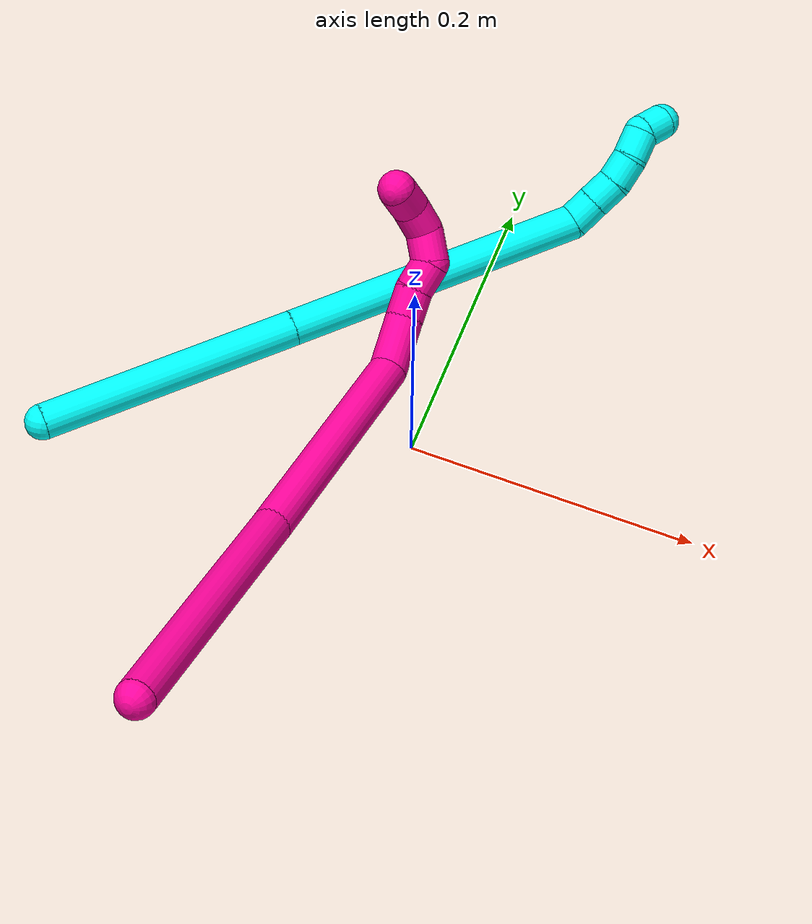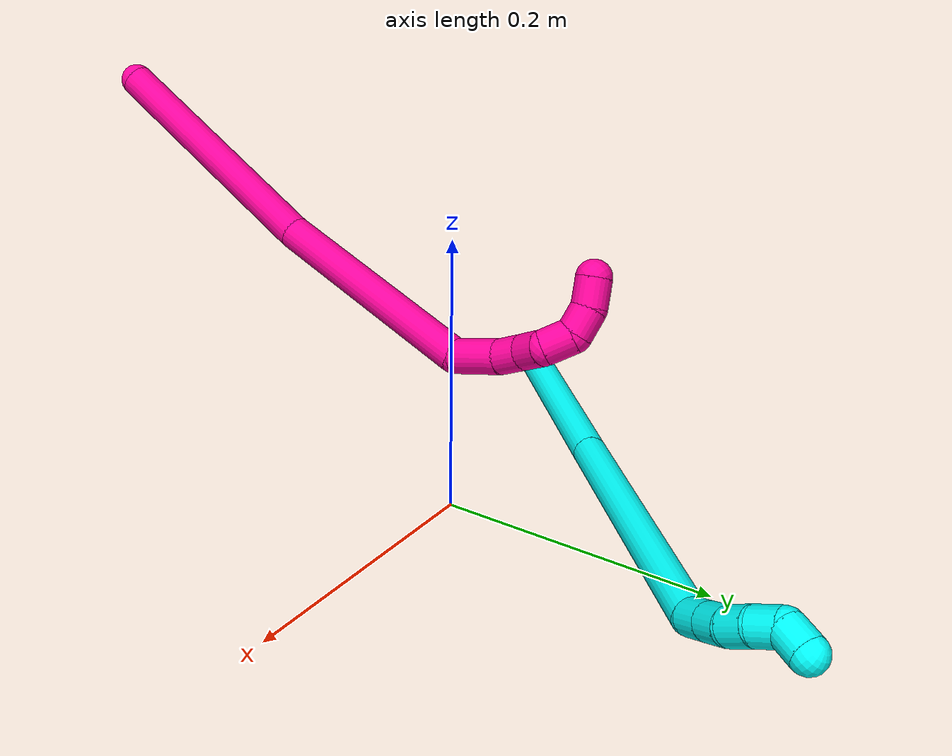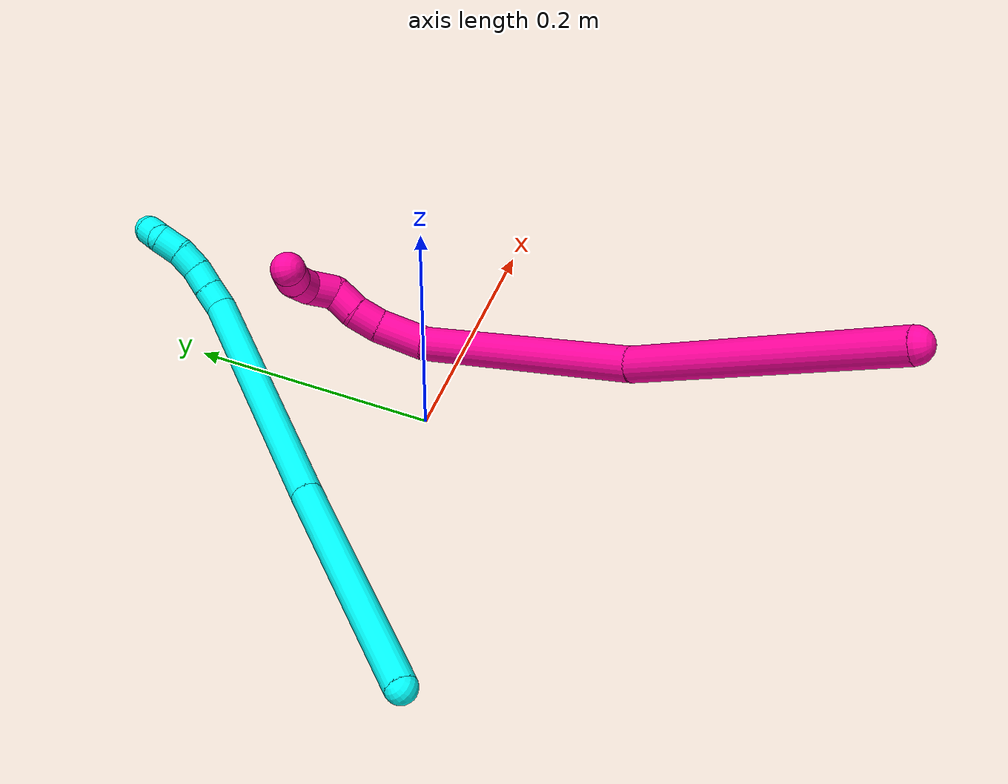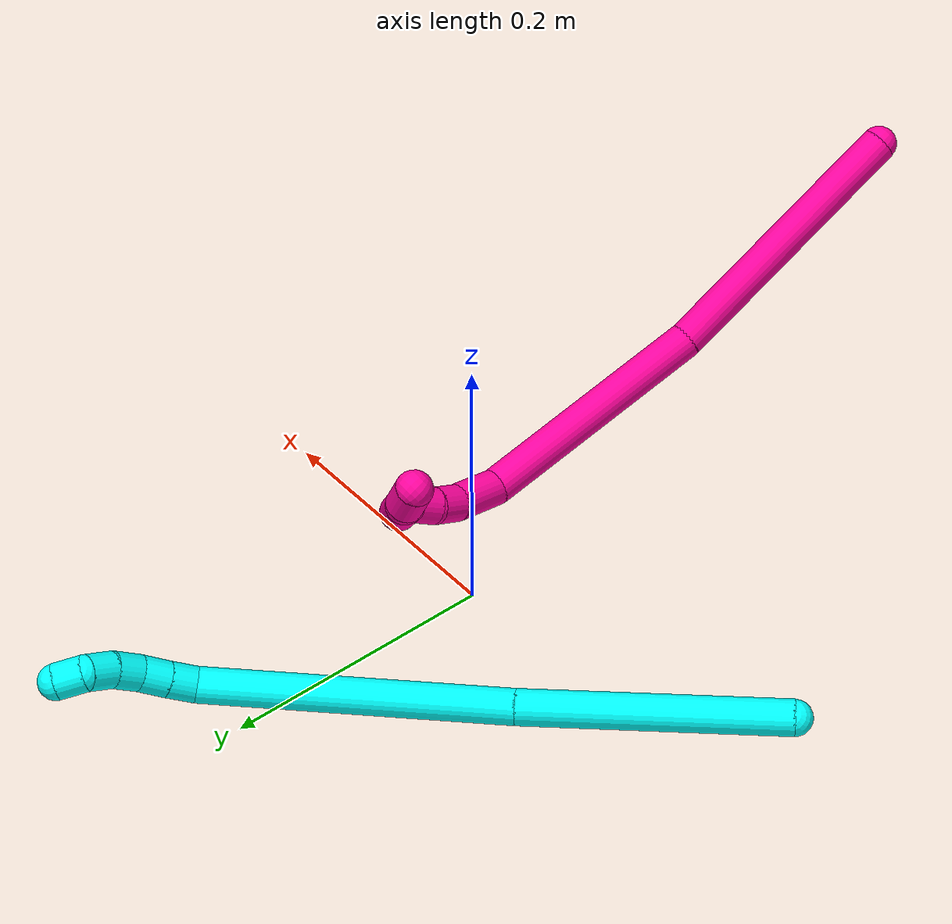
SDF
<sdf version="1.7">
 <world name="default">
  <model name="3">
   <static>0</static>
   <link name="3">
    <collision name="collision-cylinder-e_1_1_4">
     <pose>0.067872 0.055025 0.029699 -1.07587 0.826359 -0.511678</pose>
     <geometry><cylinder><radius>0.0125</radius><length>0.184569</length></cylinder></geometry>
     <surface>
      <friction><ode><mu>1.16</mu><mu2>1.16</mu2><slip1>0</slip1><slip2>0</slip2></ode></friction>
      <contact><ode><kp>1e+06</kp><kd>1</kd><max_vel>0</max_vel><min_depth>0.001</min_depth></ode></contact>
     </surface>
    </collision>
    <visual name="visual-cylinder-e_1_1_4">
     <pose>0.067872 0.055025 0.029699 -1.07587 0.826359 -0.511678</pose>
     <geometry><cylinder><radius>0.0125</radius><length>0.184569</length></cylinder></geometry>
     <material><ambient>0.003922 1 0.996078 1</ambient></material>
    </visual>
    <collision name="collision-cylinder-e_2_4_5">
     <pose>0.216103 0.171322 0.095961 -1.03278 0.844693 -0.499645</pose>
     <geometry><cylinder><radius>0.0125</radius><length>0.214928</length></cylinder></geometry>
     <surface>
      <friction><ode><mu>1.16</mu><mu2>1.16</mu2><slip1>0</slip1><slip2>0</slip2></ode></friction>
      <contact><ode><kp>1e+06</kp><kd>1</kd><max_vel>0</max_vel><min_depth>0.001</min_depth></ode></contact>
     </surface>
    </collision>
    <visual name="visual-cylinder-e_2_4_5">
     <pose>0.216103 0.171322 0.095961 -1.03278 0.844693 -0.499645</pose>
     <geometry><cylinder><radius>0.0125</radius><length>0.214928</length></cylinder></geometry>
     <material><ambient>0.003922 1 0.996078 1</ambient></material>
    </visual>
    <collision name="collision-cylinder-e_3_5_6">
     <pose>0.302114 0.236546 0.139971 -0.487964 0.590634 -0.151174</pose>
     <geometry><cylinder><radius>0.0125</radius><length>0.020302</length></cylinder></geometry>
     <surface>
      <friction><ode><mu>1.16</mu><mu2>1.16</mu2><slip1>0</slip1><slip2>0</slip2></ode></friction>
      <contact><ode><kp>1e+06</kp><kd>1</kd><max_vel>0</max_vel><min_depth>0.001</min_depth></ode></contact>
     </surface>
    </collision>
    <visual name="visual-cylinder-e_3_5_6">
     <pose>0.302114 0.236546 0.139971 -0.487964 0.590634 -0.151174</pose>
     <geometry><cylinder><radius>0.0125</radius><length>0.020302</length></cylinder></geometry>
     <material><ambient>0.003922 1 0.996078 1</ambient></material>
    </visual>
    <collision name="collision-cylinder-e_4_6_7">
     <pose>0.313516 0.244114 0.15478 -0.456487 0.611381 -0.146352</pose>
     <geometry><cylinder><radius>0.0125</radius><length>0.020031</length></cylinder></geometry>
     <surface>
      <friction><ode><mu>1.16</mu><mu2>1.16</mu2><slip1>0</slip1><slip2>0</slip2></ode></friction>
      <contact><ode><kp>1e+06</kp><kd>1</kd><max_vel>0</max_vel><min_depth>0.001</min_depth></ode></contact>
     </surface>
    </collision>
    <visual name="visual-cylinder-e_4_6_7">
     <pose>0.313516 0.244114 0.15478 -0.456487 0.611381 -0.146352</pose>
     <geometry><cylinder><radius>0.0125</radius><length>0.020031</length></cylinder></geometry>
     <material><ambient>0.003922 1 0.996078 1</ambient></material>
    </visual>
    <collision name="collision-cylinder-e_5_7_8">
     <pose>0.322857 0.251344 0.170831 -0.394187 0.36465 -0.0736</pose>
     <geometry><cylinder><radius>0.0125</radius><length>0.020148</length></cylinder></geometry>
     <surface>
      <friction><ode><mu>1.16</mu><mu2>1.16</mu2><slip1>0</slip1><slip2>0</slip2></ode></friction>
      <contact><ode><kp>1e+06</kp><kd>1</kd><max_vel>0</max_vel><min_depth>0.001</min_depth></ode></contact>
     </surface>
    </collision>
    <visual name="visual-cylinder-e_5_7_8">
     <pose>0.322857 0.251344 0.170831 -0.394187 0.36465 -0.0736</pose>
     <geometry><cylinder><radius>0.0125</radius><length>0.020148</length></cylinder></geometry>
     <material><ambient>0.003922 1 0.996078 1</ambient></material>
    </visual>
    <collision name="collision-cylinder-e_6_8_9">
     <pose>0.328272 0.260068 0.187932 -0.54596 0.183077 -0.051388</pose>
     <geometry><cylinder><radius>0.0125</radius><length>0.020018</length></cylinder></geometry>
     <surface>
      <friction><ode><mu>1.16</mu><mu2>1.16</mu2><slip1>0</slip1><slip2>0</slip2></ode></friction>
      <contact><ode><kp>1e+06</kp><kd>1</kd><max_vel>0</max_vel><min_depth>0.001</min_depth></ode></contact>
     </surface>
    </collision>
    <visual name="visual-cylinder-e_6_8_9">
     <pose>0.328272 0.260068 0.187932 -0.54596 0.183077 -0.051388</pose>
     <geometry><cylinder><radius>0.0125</radius><length>0.020018</length></cylinder></geometry>
     <material><ambient>0.003922 1 0.996078 1</ambient></material>
    </visual>
    <collision name="collision-cylinder-e_7_9_2">
     <pose>0.335176 0.273342 0.199094 -1.24576 0.532994 -0.387248</pose>
     <geometry><cylinder><radius>0.0125</radius><length>0.020004</length></cylinder></geometry>
     <surface>
      <friction><ode><mu>1.16</mu><mu2>1.16</mu2><slip1>0</slip1><slip2>0</slip2></ode></friction>
      <contact><ode><kp>1e+06</kp><kd>1</kd><max_vel>0</max_vel><min_depth>0.001</min_depth></ode></contact>
     </surface>
    </collision>
    <visual name="visual-cylinder-e_7_9_2">
     <pose>0.335176 0.273342 0.199094 -1.24576 0.532994 -0.387248</pose>
     <geometry><cylinder><radius>0.0125</radius><length>0.020004</length></cylinder></geometry>
     <material><ambient>0.003922 1 0.996078 1</ambient></material>
    </visual>
    <collision name="collision-sphere-2">
     <pose>0.340259 0.281506 0.201845 0 -0 0</pose>
     <geometry><sphere><radius>0.0125</radius></sphere></geometry>
     <surface>
      <friction><ode><mu>1.16</mu><mu2>1.16</mu2><slip1>0</slip1><slip2>0</slip2></ode></friction>
      <contact><ode><kp>1e+06</kp><kd>1</kd><max_vel>0</max_vel><min_depth>0.001</min_depth></ode></contact>
     </surface>
    </collision>
    <visual name="visual-sphere-2">
     <pose>0.340259 0.281506 0.201845 0 -0 0</pose>
     <geometry><sphere><radius>0.0125</radius></sphere></geometry>
     <material><ambient>0.003922 1 0.996078 1</ambient></material>
    </visual>
    <collision name="collision-sphere-9">
     <pose>0.330094 0.265179 0.196343 0 -0 0</pose>
     <geometry><sphere><radius>0.0125</radius></sphere></geometry>
     <surface>
      <friction><ode><mu>1.16</mu><mu2>1.16</mu2><slip1>0</slip1><slip2>0</slip2></ode></friction>
      <contact><ode><kp>1e+06</kp><kd>1</kd><max_vel>0</max_vel><min_depth>0.001</min_depth></ode></contact>
     </surface>
    </collision>
    <visual name="visual-sphere-9">
     <pose>0.330094 0.265179 0.196343 0 -0 0</pose>
     <geometry><sphere><radius>0.0125</radius></sphere></geometry>
     <material><ambient>0.003922 1 0.996078 1</ambient></material>
    </visual>
    <collision name="collision-sphere-4">
     <pose>0.135745 0.11005 0.059397 0 -0 0</pose>
     <geometry><sphere><radius>0.0125</radius></sphere></geometry>
     <surface>
      <friction><ode><mu>1.16</mu><mu2>1.16</mu2><slip1>0</slip1><slip2>0</slip2></ode></friction>
      <contact><ode><kp>1e+06</kp><kd>1</kd><max_vel>0</max_vel><min_depth>0.001</min_depth></ode></contact>
     </surface>
    </collision>
    <visual name="visual-sphere-4">
     <pose>0.135745 0.11005 0.059397 0 -0 0</pose>
     <geometry><sphere><radius>0.0125</radius></sphere></geometry>
     <material><ambient>0.003922 1 0.996078 1</ambient></material>
    </visual>
    <collision name="collision-sphere-1">
     <geometry><sphere><radius>0.0125</radius></sphere></geometry>
     <surface>
      <friction><ode><mu>1.16</mu><mu2>1.16</mu2><slip1>0</slip1><slip2>0</slip2></ode></friction>
      <contact><ode><kp>1e+06</kp><kd>1</kd><max_vel>0</max_vel><min_depth>0.001</min_depth></ode></contact>
     </surface>
    </collision>
    <visual name="visual-sphere-1">
     <geometry><sphere><radius>0.0125</radius></sphere></geometry>
     <material><ambient>0.003922 1 0.996078 1</ambient></material>
    </visual>
    <collision name="collision-sphere-8">
     <pose>0.32645 0.254958 0.179521 0 -0 0</pose>
     <geometry><sphere><radius>0.0125</radius></sphere></geometry>
     <surface>
      <friction><ode><mu>1.16</mu><mu2>1.16</mu2><slip1>0</slip1><slip2>0</slip2></ode></friction>
      <contact><ode><kp>1e+06</kp><kd>1</kd><max_vel>0</max_vel><min_depth>0.001</min_depth></ode></contact>
     </surface>
    </collision>
    <visual name="visual-sphere-8">
     <pose>0.32645 0.254958 0.179521 0 -0 0</pose>
     <geometry><sphere><radius>0.0125</radius></sphere></geometry>
     <material><ambient>0.003922 1 0.996078 1</ambient></material>
    </visual>
    <collision name="collision-sphere-5">
     <pose>0.296461 0.232593 0.132524 0 -0 0</pose>
     <geometry><sphere><radius>0.0125</radius></sphere></geometry>
     <surface>
      <friction><ode><mu>1.16</mu><mu2>1.16</mu2><slip1>0</slip1><slip2>0</slip2></ode></friction>
      <contact><ode><kp>1e+06</kp><kd>1</kd><max_vel>0</max_vel><min_depth>0.001</min_depth></ode></contact>
     </surface>
    </collision>
    <visual name="visual-sphere-5">
     <pose>0.296461 0.232593 0.132524 0 -0 0</pose>
     <geometry><sphere><radius>0.0125</radius></sphere></geometry>
     <material><ambient>0.003922 1 0.996078 1</ambient></material>
    </visual>
    <collision name="collision-sphere-6">
     <pose>0.307767 0.240499 0.147418 0 -0 0</pose>
     <geometry><sphere><radius>0.0125</radius></sphere></geometry>
     <surface>
      <friction><ode><mu>1.16</mu><mu2>1.16</mu2><slip1>0</slip1><slip2>0</slip2></ode></friction>
      <contact><ode><kp>1e+06</kp><kd>1</kd><max_vel>0</max_vel><min_depth>0.001</min_depth></ode></contact>
     </surface>
    </collision>
    <visual name="visual-sphere-6">
     <pose>0.307767 0.240499 0.147418 0 -0 0</pose>
     <geometry><sphere><radius>0.0125</radius></sphere></geometry>
     <material><ambient>0.003922 1 0.996078 1</ambient></material>
    </visual>
    <collision name="collision-sphere-7">
     <pose>0.319264 0.247729 0.162141 0 -0 0</pose>
     <geometry><sphere><radius>0.0125</radius></sphere></geometry>
     <surface>
      <friction><ode><mu>1.16</mu><mu2>1.16</mu2><slip1>0</slip1><slip2>0</slip2></ode></friction>
      <contact><ode><kp>1e+06</kp><kd>1</kd><max_vel>0</max_vel><min_depth>0.001</min_depth></ode></contact>
     </surface>
    </collision>
    <visual name="visual-sphere-7">
     <pose>0.319264 0.247729 0.162141 0 -0 0</pose>
     <geometry><sphere><radius>0.0125</radius></sphere></geometry>
     <material><ambient>0.003922 1 0.996078 1</ambient></material>
    </visual>
    <inertial>
     <pose>0.182337 0.144816 0.08647 0 -0 0</pose>
     <mass>0.5</mass>
     <inertia>
      <ixx>0.000391</ixx>
      <ixy>0</ixy>
      <ixz>0</ixz>
      <iyy>0.000606</iyy>
      <iyz>0</iyz>
      <izz>-0.0018</izz>
     </inertia>
    </inertial>
   </link>
   <pose>-0.237085 -0.080005 0.017308 -0.648855 -0.097869 0.067357</pose>
  </model>
  <model name="18">
   <static>0</static>
   <link name="18">
    <collision name="collision-cylinder-e_1_1_4">
     <pose>-0.00084 0.003702 -0.096216 -3.10314 -0.00872 0.445905</pose>
     <geometry><cylinder><radius>0.0125</radius><length>0.192581</length></cylinder></geometry>
     <surface>
      <friction><ode><mu>1.16</mu><mu2>1.16</mu2><slip1>0</slip1><slip2>0</slip2></ode></friction>
      <contact><ode><kp>1e+06</kp><kd>1</kd><max_vel>0</max_vel><min_depth>0.001</min_depth></ode></contact>
     </surface>
    </collision>
    <visual name="visual-cylinder-e_1_1_4">
     <pose>-0.00084 0.003702 -0.096216 -3.10314 -0.00872 0.445905</pose>
     <geometry><cylinder><radius>0.0125</radius><length>0.192581</length></cylinder></geometry>
     <material><ambient>1 0.007843 0.615686 1</ambient></material>
    </visual>
    <collision name="collision-cylinder-e_2_4_5">
     <pose>0.002549 0.023808 -0.27463 -2.94461 0.050398 -0.499504</pose>
     <geometry><cylinder><radius>0.0125</radius><length>0.167852</length></cylinder></geometry>
     <surface>
      <friction><ode><mu>1.16</mu><mu2>1.16</mu2><slip1>0</slip1><slip2>0</slip2></ode></friction>
      <contact><ode><kp>1e+06</kp><kd>1</kd><max_vel>0</max_vel><min_depth>0.001</min_depth></ode></contact>
     </surface>
    </collision>
    <visual name="visual-cylinder-e_2_4_5">
     <pose>0.002549 0.023808 -0.27463 -2.94461 0.050398 -0.499504</pose>
     <geometry><cylinder><radius>0.0125</radius><length>0.167852</length></cylinder></geometry>
     <material><ambient>1 0.007843 0.615686 1</ambient></material>
    </visual>
    <collision name="collision-cylinder-e_3_5_6">
     <pose>0.005796 0.052795 -0.369961 -2.37758 -0.053833 0.133831</pose>
     <geometry><cylinder><radius>0.0125</radius><length>0.036429</length></cylinder></geometry>
     <surface>
      <friction><ode><mu>1.16</mu><mu2>1.16</mu2><slip1>0</slip1><slip2>0</slip2></ode></friction>
      <contact><ode><kp>1e+06</kp><kd>1</kd><max_vel>0</max_vel><min_depth>0.001</min_depth></ode></contact>
     </surface>
    </collision>
    <visual name="visual-cylinder-e_3_5_6">
     <pose>0.005796 0.052795 -0.369961 -2.37758 -0.053833 0.133831</pose>
     <geometry><cylinder><radius>0.0125</radius><length>0.036429</length></cylinder></geometry>
     <material><ambient>1 0.007843 0.615686 1</ambient></material>
    </visual>
    <collision name="collision-cylinder-e_4_6_7">
     <pose>0.00499 0.073736 -0.388919 -2.17949 0.017023 -0.032612</pose>
     <geometry><cylinder><radius>0.0125</radius><length>0.020378</length></cylinder></geometry>
     <surface>
      <friction><ode><mu>1.16</mu><mu2>1.16</mu2><slip1>0</slip1><slip2>0</slip2></ode></friction>
      <contact><ode><kp>1e+06</kp><kd>1</kd><max_vel>0</max_vel><min_depth>0.001</min_depth></ode></contact>
     </surface>
    </collision>
    <visual name="visual-cylinder-e_4_6_7">
     <pose>0.00499 0.073736 -0.388919 -2.17949 0.017023 -0.032612</pose>
     <geometry><cylinder><radius>0.0125</radius><length>0.020378</length></cylinder></geometry>
     <material><ambient>1 0.007843 0.615686 1</ambient></material>
    </visual>
    <collision name="collision-cylinder-e_5_7_8">
     <pose>0.007836 0.090321 -0.400035 -2.1423 0.266678 -0.481927</pose>
     <geometry><cylinder><radius>0.0125</radius><length>0.020281</length></cylinder></geometry>
     <surface>
      <friction><ode><mu>1.16</mu><mu2>1.16</mu2><slip1>0</slip1><slip2>0</slip2></ode></friction>
      <contact><ode><kp>1e+06</kp><kd>1</kd><max_vel>0</max_vel><min_depth>0.001</min_depth></ode></contact>
     </surface>
    </collision>
    <visual name="visual-cylinder-e_5_7_8">
     <pose>0.007836 0.090321 -0.400035 -2.1423 0.266678 -0.481927</pose>
     <geometry><cylinder><radius>0.0125</radius><length>0.020281</length></cylinder></geometry>
     <material><ambient>1 0.007843 0.615686 1</ambient></material>
    </visual>
    <collision name="collision-cylinder-e_6_8_9">
     <pose>0.005629 0.107215 -0.409526 -2.02201 -0.468903 0.728282</pose>
     <geometry><cylinder><radius>0.0125</radius><length>0.021593</length></cylinder></geometry>
     <surface>
      <friction><ode><mu>1.16</mu><mu2>1.16</mu2><slip1>0</slip1><slip2>0</slip2></ode></friction>
      <contact><ode><kp>1e+06</kp><kd>1</kd><max_vel>0</max_vel><min_depth>0.001</min_depth></ode></contact>
     </surface>
    </collision>
    <visual name="visual-cylinder-e_6_8_9">
     <pose>0.005629 0.107215 -0.409526 -2.02201 -0.468903 0.728282</pose>
     <geometry><cylinder><radius>0.0125</radius><length>0.021593</length></cylinder></geometry>
     <material><ambient>1 0.007843 0.615686 1</ambient></material>
    </visual>
    <collision name="collision-cylinder-e_7_9_10">
     <pose>-0.004305 0.124216 -0.411048 -1.25987 -0.523763 0.385942</pose>
     <geometry><cylinder><radius>0.0125</radius><length>0.020216</length></cylinder></geometry>
     <surface>
      <friction><ode><mu>1.16</mu><mu2>1.16</mu2><slip1>0</slip1><slip2>0</slip2></ode></friction>
      <contact><ode><kp>1e+06</kp><kd>1</kd><max_vel>0</max_vel><min_depth>0.001</min_depth></ode></contact>
     </surface>
    </collision>
    <visual name="visual-cylinder-e_7_9_10">
     <pose>-0.004305 0.124216 -0.411048 -1.25987 -0.523763 0.385942</pose>
     <geometry><cylinder><radius>0.0125</radius><length>0.020216</length></cylinder></geometry>
     <material><ambient>1 0.007843 0.615686 1</ambient></material>
    </visual>
    <collision name="collision-cylinder-e_8_10_2">
     <pose>-0.012687 0.140352 -0.402465 -0.922999 -0.327665 0.164059</pose>
     <geometry><cylinder><radius>0.0125</radius><length>0.020672</length></cylinder></geometry>
     <surface>
      <friction><ode><mu>1.16</mu><mu2>1.16</mu2><slip1>0</slip1><slip2>0</slip2></ode></friction>
      <contact><ode><kp>1e+06</kp><kd>1</kd><max_vel>0</max_vel><min_depth>0.001</min_depth></ode></contact>
     </surface>
    </collision>
    <visual name="visual-cylinder-e_8_10_2">
     <pose>-0.012687 0.140352 -0.402465 -0.922999 -0.327665 0.164059</pose>
     <geometry><cylinder><radius>0.0125</radius><length>0.020672</length></cylinder></geometry>
     <material><ambient>1 0.007843 0.615686 1</ambient></material>
    </visual>
    <collision name="collision-sphere-2">
     <pose>-0.016014 0.148156 -0.39656 0 -0 0</pose>
     <geometry><sphere><radius>0.0125</radius></sphere></geometry>
     <surface>
      <friction><ode><mu>1.16</mu><mu2>1.16</mu2><slip1>0</slip1><slip2>0</slip2></ode></friction>
      <contact><ode><kp>1e+06</kp><kd>1</kd><max_vel>0</max_vel><min_depth>0.001</min_depth></ode></contact>
     </surface>
    </collision>
    <visual name="visual-sphere-2">
     <pose>-0.016014 0.148156 -0.39656 0 -0 0</pose>
     <geometry><sphere><radius>0.0125</radius></sphere></geometry>
     <material><ambient>1 0.007843 0.615686 1</ambient></material>
    </visual>
    <collision name="collision-sphere-10">
     <pose>-0.009361 0.132549 -0.40837 0 -0 0</pose>
     <geometry><sphere><radius>0.0125</radius></sphere></geometry>
     <surface>
      <friction><ode><mu>1.16</mu><mu2>1.16</mu2><slip1>0</slip1><slip2>0</slip2></ode></friction>
      <contact><ode><kp>1e+06</kp><kd>1</kd><max_vel>0</max_vel><min_depth>0.001</min_depth></ode></contact>
     </surface>
    </collision>
    <visual name="visual-sphere-10">
     <pose>-0.009361 0.132549 -0.40837 0 -0 0</pose>
     <geometry><sphere><radius>0.0125</radius></sphere></geometry>
     <material><ambient>1 0.007843 0.615686 1</ambient></material>
    </visual>
    <collision name="collision-sphere-9">
     <pose>0.00075 0.115883 -0.413726 0 -0 0</pose>
     <geometry><sphere><radius>0.0125</radius></sphere></geometry>
     <surface>
      <friction><ode><mu>1.16</mu><mu2>1.16</mu2><slip1>0</slip1><slip2>0</slip2></ode></friction>
      <contact><ode><kp>1e+06</kp><kd>1</kd><max_vel>0</max_vel><min_depth>0.001</min_depth></ode></contact>
     </surface>
    </collision>
    <visual name="visual-sphere-9">
     <pose>0.00075 0.115883 -0.413726 0 -0 0</pose>
     <geometry><sphere><radius>0.0125</radius></sphere></geometry>
     <material><ambient>1 0.007843 0.615686 1</ambient></material>
    </visual>
    <collision name="collision-sphere-4">
     <pose>-0.001679 0.007404 -0.192431 0 -0 0</pose>
     <geometry><sphere><radius>0.0125</radius></sphere></geometry>
     <surface>
      <friction><ode><mu>1.16</mu><mu2>1.16</mu2><slip1>0</slip1><slip2>0</slip2></ode></friction>
      <contact><ode><kp>1e+06</kp><kd>1</kd><max_vel>0</max_vel><min_depth>0.001</min_depth></ode></contact>
     </surface>
    </collision>
    <visual name="visual-sphere-4">
     <pose>-0.001679 0.007404 -0.192431 0 -0 0</pose>
     <geometry><sphere><radius>0.0125</radius></sphere></geometry>
     <material><ambient>1 0.007843 0.615686 1</ambient></material>
    </visual>
    <collision name="collision-sphere-1">
     <geometry><sphere><radius>0.0125</radius></sphere></geometry>
     <surface>
      <friction><ode><mu>1.16</mu><mu2>1.16</mu2><slip1>0</slip1><slip2>0</slip2></ode></friction>
      <contact><ode><kp>1e+06</kp><kd>1</kd><max_vel>0</max_vel><min_depth>0.001</min_depth></ode></contact>
     </surface>
    </collision>
    <visual name="visual-sphere-1">
     <geometry><sphere><radius>0.0125</radius></sphere></geometry>
     <material><ambient>1 0.007843 0.615686 1</ambient></material>
    </visual>
    <collision name="collision-sphere-8">
     <pose>0.010508 0.098548 -0.405326 0 -0 0</pose>
     <geometry><sphere><radius>0.0125</radius></sphere></geometry>
     <surface>
      <friction><ode><mu>1.16</mu><mu2>1.16</mu2><slip1>0</slip1><slip2>0</slip2></ode></friction>
      <contact><ode><kp>1e+06</kp><kd>1</kd><max_vel>0</max_vel><min_depth>0.001</min_depth></ode></contact>
     </surface>
    </collision>
    <visual name="visual-sphere-8">
     <pose>0.010508 0.098548 -0.405326 0 -0 0</pose>
     <geometry><sphere><radius>0.0125</radius></sphere></geometry>
     <material><ambient>1 0.007843 0.615686 1</ambient></material>
    </visual>
    <collision name="collision-sphere-5">
     <pose>0.006776 0.040212 -0.356828 0 -0 0</pose>
     <geometry><sphere><radius>0.0125</radius></sphere></geometry>
     <surface>
      <friction><ode><mu>1.16</mu><mu2>1.16</mu2><slip1>0</slip1><slip2>0</slip2></ode></friction>
      <contact><ode><kp>1e+06</kp><kd>1</kd><max_vel>0</max_vel><min_depth>0.001</min_depth></ode></contact>
     </surface>
    </collision>
    <visual name="visual-sphere-5">
     <pose>0.006776 0.040212 -0.356828 0 -0 0</pose>
     <geometry><sphere><radius>0.0125</radius></sphere></geometry>
     <material><ambient>1 0.007843 0.615686 1</ambient></material>
    </visual>
    <collision name="collision-sphere-6">
     <pose>0.004816 0.065378 -0.383094 0 -0 0</pose>
     <geometry><sphere><radius>0.0125</radius></sphere></geometry>
     <surface>
      <friction><ode><mu>1.16</mu><mu2>1.16</mu2><slip1>0</slip1><slip2>0</slip2></ode></friction>
      <contact><ode><kp>1e+06</kp><kd>1</kd><max_vel>0</max_vel><min_depth>0.001</min_depth></ode></contact>
     </surface>
    </collision>
    <visual name="visual-sphere-6">
     <pose>0.004816 0.065378 -0.383094 0 -0 0</pose>
     <geometry><sphere><radius>0.0125</radius></sphere></geometry>
     <material><ambient>1 0.007843 0.615686 1</ambient></material>
    </visual>
    <collision name="collision-sphere-7">
     <pose>0.005163 0.082093 -0.394745 0 -0 0</pose>
     <geometry><sphere><radius>0.0125</radius></sphere></geometry>
     <surface>
      <friction><ode><mu>1.16</mu><mu2>1.16</mu2><slip1>0</slip1><slip2>0</slip2></ode></friction>
      <contact><ode><kp>1e+06</kp><kd>1</kd><max_vel>0</max_vel><min_depth>0.001</min_depth></ode></contact>
     </surface>
    </collision>
    <visual name="visual-sphere-7">
     <pose>0.005163 0.082093 -0.394745 0 -0 0</pose>
     <geometry><sphere><radius>0.0125</radius></sphere></geometry>
     <material><ambient>1 0.007843 0.615686 1</ambient></material>
    </visual>
    <inertial>
     <pose>0.00102 0.035388 -0.239228 0 -0 0</pose>
     <mass>0.5</mass>
     <inertia>
      <ixx>0.000976</ixx>
      <ixy>0</ixy>
      <ixz>0</ixz>
      <iyy>-0.000808</iyy>
      <iyz>0</iyz>
      <izz>-0.000155</izz>
     </inertia>
    </inertial>
   </link>
   <pose>-0.038474 -0.3327 0.259801 1.02153 -0.095902 -0.006849</pose>
  </model>
 </world>
</sdf>
